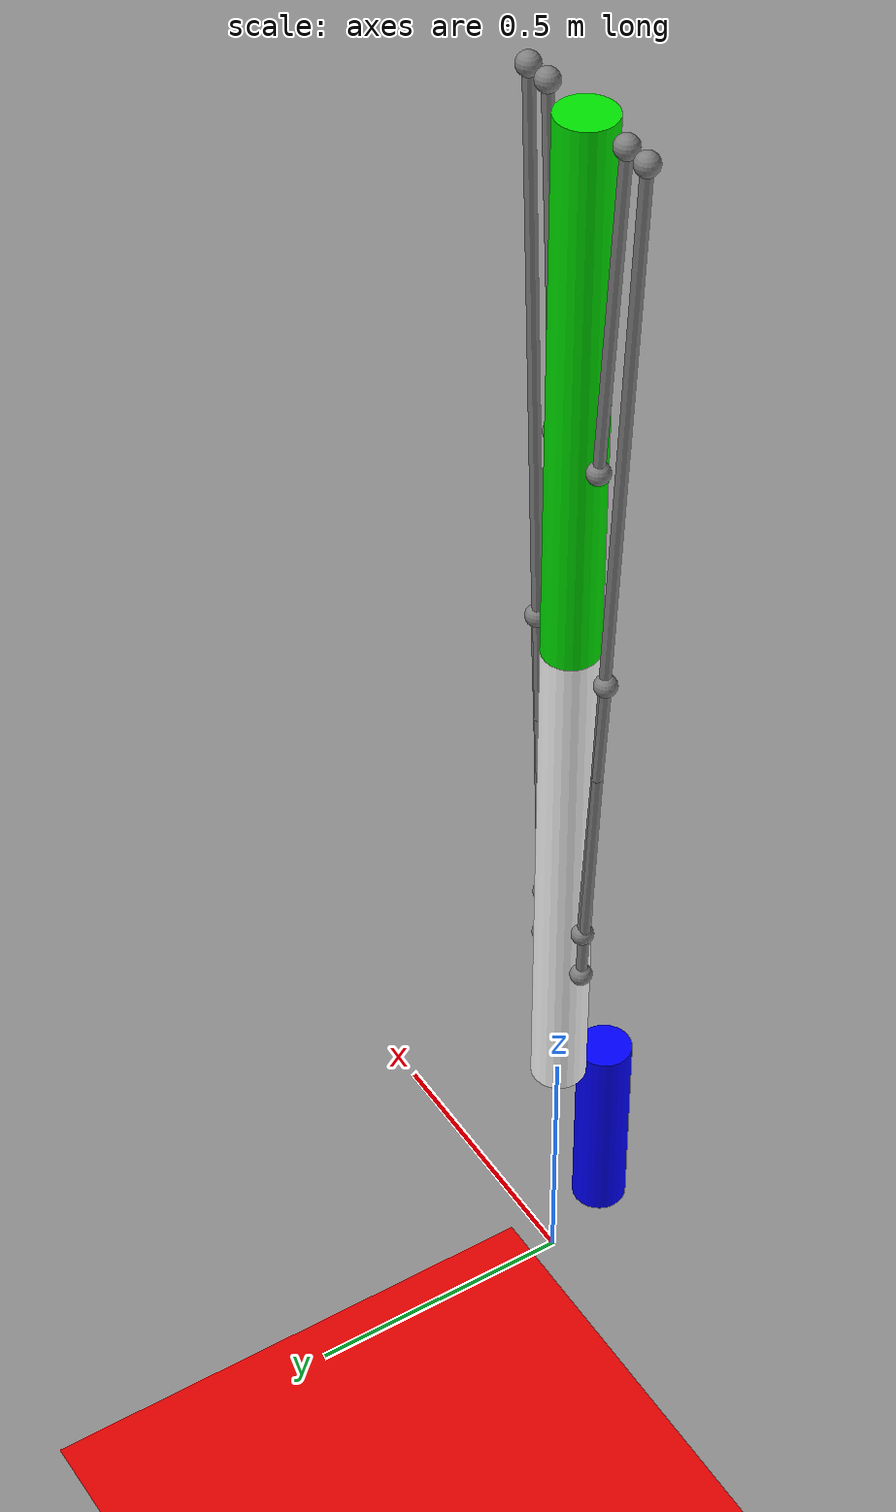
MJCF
<mujoco>
    <!-- min distance from root to endfactor is 1.766, max is 2 -->
    <option timestep="0.005">
		<flag gravity="enable"/>
    </option>
    <size nuserdata="3"/>
    <worldbody>
        <light diffuse=".5 .5 .5" pos="0 0 3" dir="0 0 -1"/>
        <geom type="plane" pos="0 0 -1" size="1 1 0.1" rgba=".9 0 0 1"/>

        <site name="s0" pos="0.1 0 2.5" size="0.02"/>
        <site name="s2" pos="-0.1 0 2.5" size="0.02"/>
        <site name="sc0" pos="0.15 0 2.5" size="0.02"/>
        <site name="sc1" pos="-0.15 0 2.5" size="0.02"/>
        <body pos="0 0 1.5" euler="0 0 0">
            <joint name="joint0" type="hinge" axis="0 -1 0" pos="0 0 1" damping="0.001" limited="true" range="-56 56"/>
            <geom name="link0" type="cylinder" pos="0 0 0.5" size="0.05 .5" rgba="0 .9 0 1" mass="1"/>
            <site name="s1" pos="0.06 0 0.4" size="0.02"/>
            <site name="s3" pos="-0.06 0 0.4" size="0.02"/>
            <site name="s4" pos="0.1 0 0" size="0.02"/>
            <site name="s5" pos="-0.1 0 0" size="0.02"/>
            <body pos="0 0 -1" euler="0 0 0">
                <joint name="joint1" type="hinge" axis="0 -1 0" pos="0 0 1" damping="0.001" limited="true" range="-56 56"/>
                <geom name="link1" pos="0 0 0.5" type="cylinder" size="0.05 .5" rgba="1 1 1 1" mass="1"/>
                <site name="s6" pos="0.06 0 0.4" size="0.02"/>
                <site name="s7" pos="-0.06 0 0.4" size="0.02"/>
                <site name="sc2" pos="0.06 0 0.3" size="0.02"/>
                <site name="sc3" pos="-0.06 0 0.3" size="0.02"/>
                <body pos="0 -0.1 -0.2" euler="0 0 0">
                    <joint name="joint2" type="hinge" axis="0 -1 0" pos="0 0 0.2" damping="0"/>
                    <geom name="link2" pos="0 0 0" type="cylinder" size="0.05 .2" rgba="0 0 1 1" mass="1"/>
                </body>
            </body>
        </body>
    </worldbody>
    <tendon>
        <spatial name="r-tendon" width="0.01">
            <site site="s0"/>
            <site site="s1"/>
        </spatial>
    </tendon>
    <tendon>
        <spatial name="l-tendon" width="0.01">
            <site site="s2"/>
            <site site="s3"/>
        </spatial>
    </tendon>
    <tendon>
        <spatial name="r-middle" width="0.01">
            <site site="s4"/>
            <site site="s6"/>
        </spatial>
    </tendon>
    <tendon>
        <spatial name="l-middle" width="0.01">
            <site site="s5"/>
            <site site="s7"/>
        </spatial>
    </tendon>
    <tendon>
        <spatial name="cross1" width="0.01">
            <site site="sc0"/>
            <site site="sc2"/>
        </spatial>
    </tendon>
    <tendon>
        <spatial name="cross2" width="0.01">
            <site site="sc1"/>
            <site site="sc3"/>
        </spatial>
    </tendon>
    <actuator>
        <muscle  name="r-muscle" tendon="r-tendon" range="0.75 1.15" scale="400"/>
        <muscle  name="l-muscle" tendon="l-tendon" range="0.75 1.15" scale="400"/>
        <muscle  name="r-ctrl" tendon="r-middle" range="0.75 1.15" scale="400"/>
        <muscle  name="l-ctrl" tendon="l-middle" range="0.75 1.15" scale="400"/>
        <muscle  name="cr-ctrl" tendon="cross1" range="0.75 1.15" scale="100"/>
        <muscle  name="cl-ctrl" tendon="cross2" range="0.75 1.15" scale="100"/>
    </actuator>
</mujoco>
